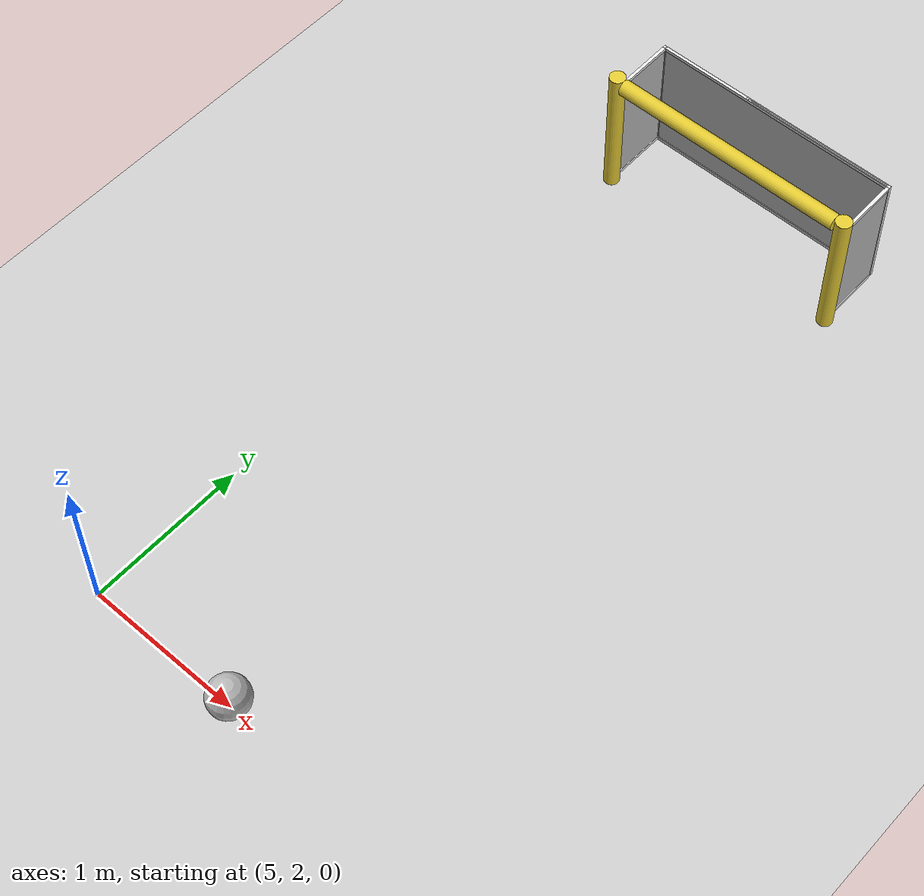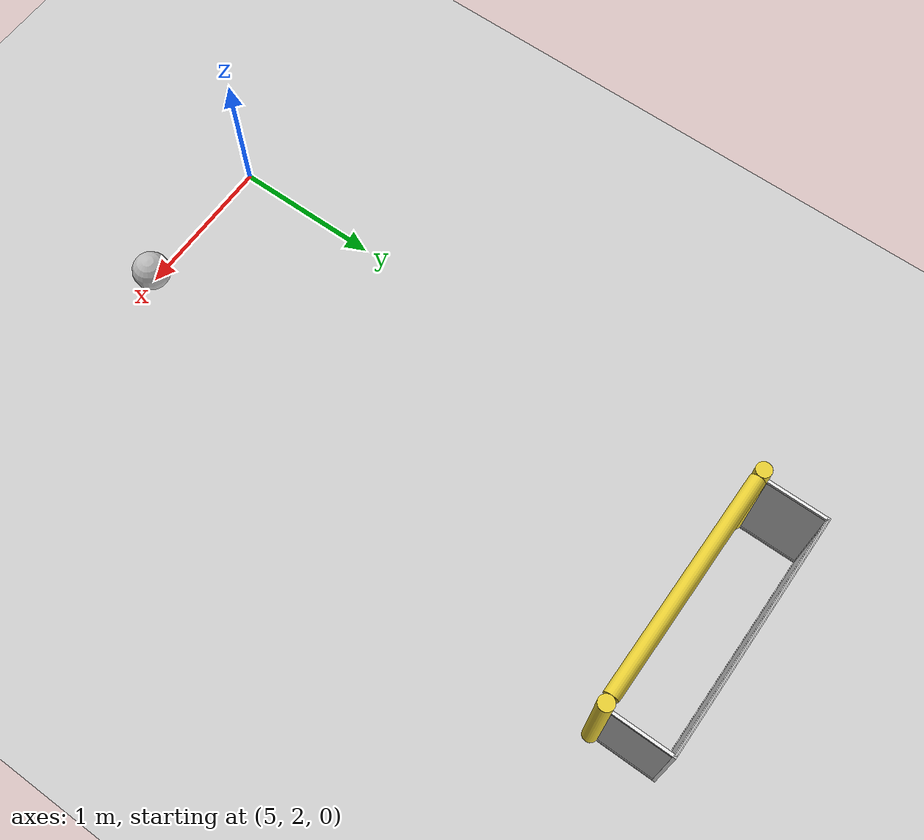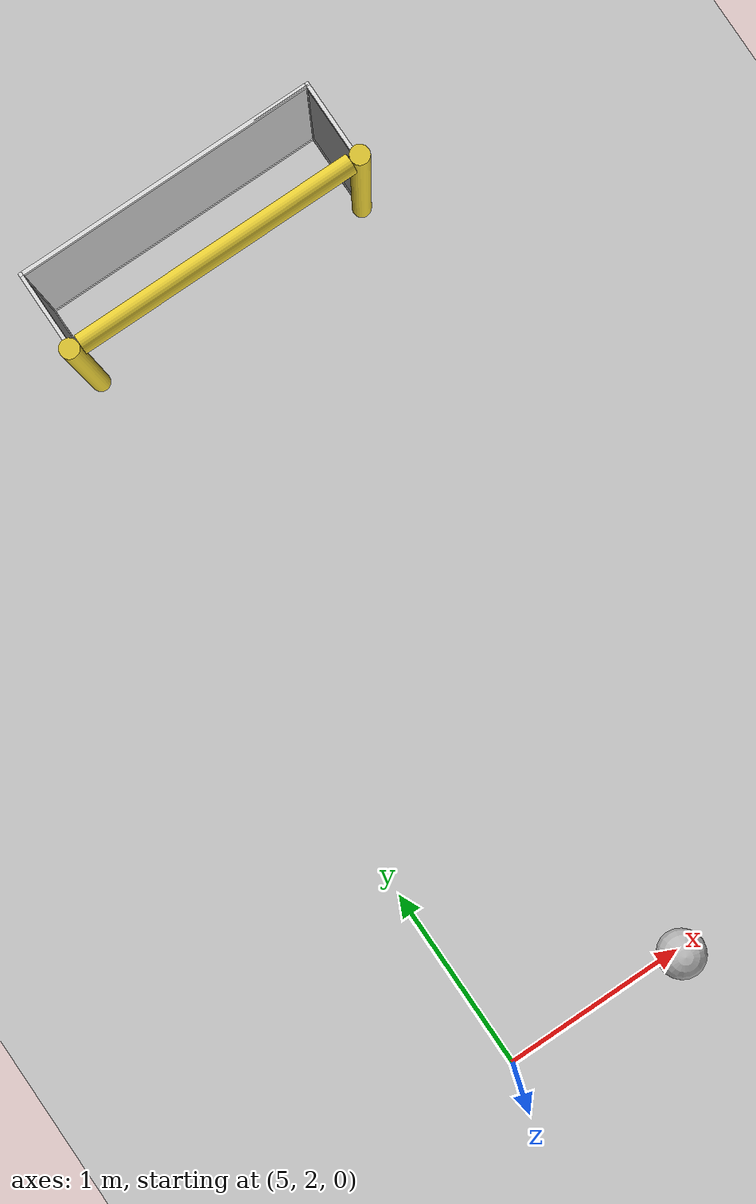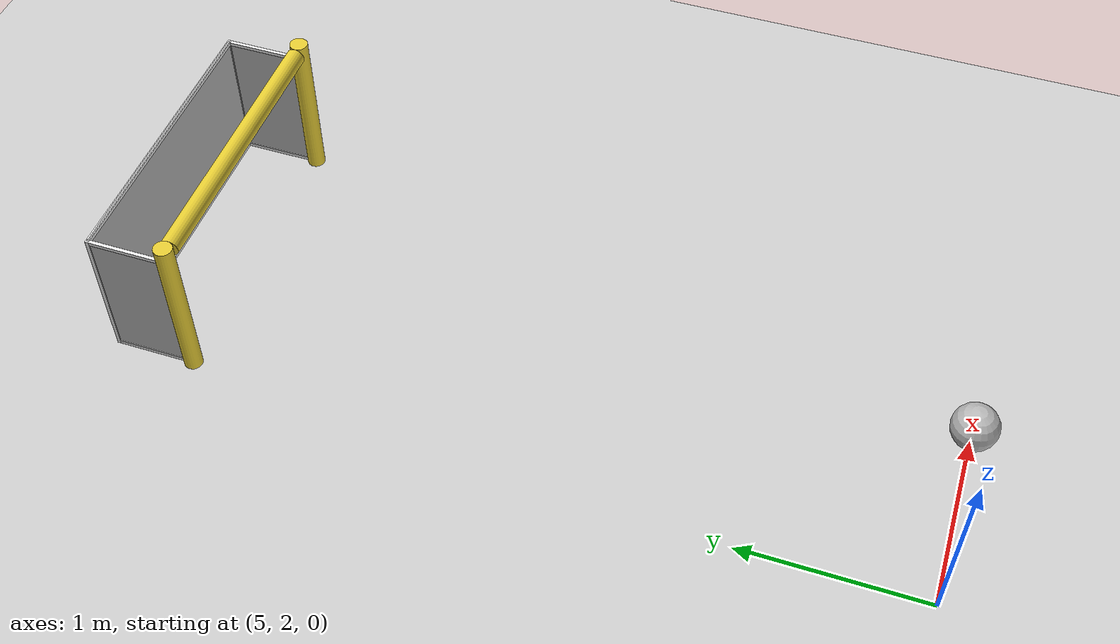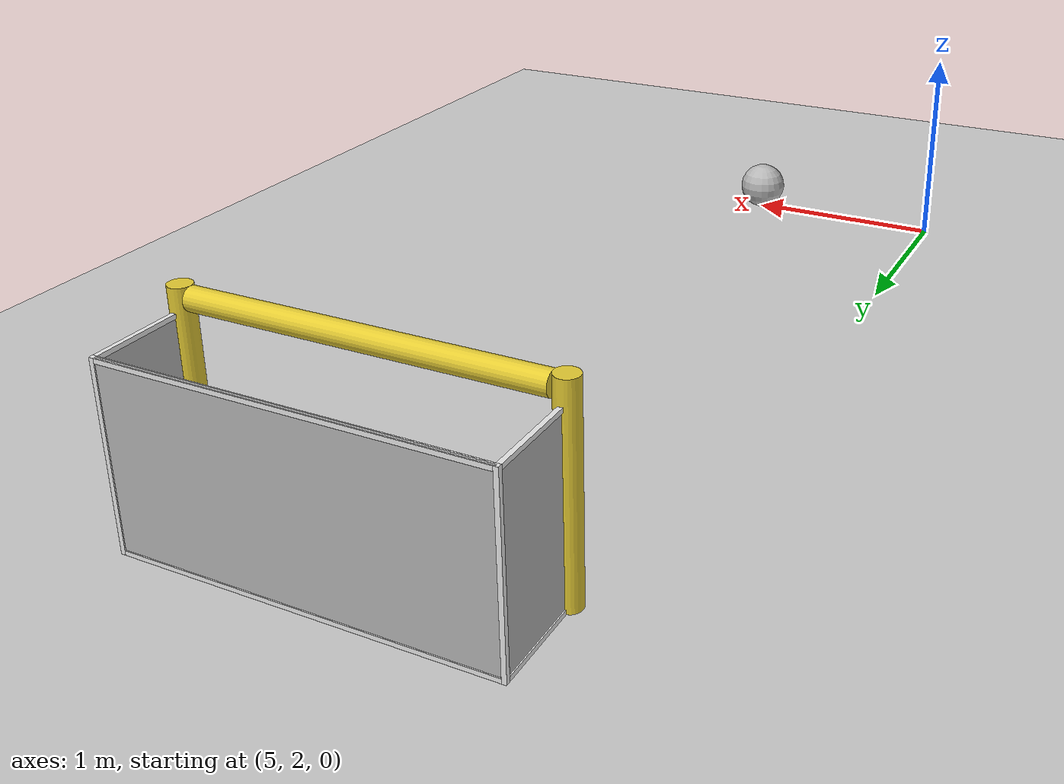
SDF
<?xml version="1.0" ?>
<sdf version="1.4">
  <world name="default">
    <include>
      <uri>model://ground_plane</uri>
    </include>
    <include>
        <uri>model://sun</uri>
    </include>
    <include>
      <uri>model://frc2016_ball</uri>
      <name>ball</name>
      <pose>6.0 2.0 0.13 0.0 0.0 0.0</pose> <!-- Initial position of the ball -->
    </include>
    <include>
      <uri>model://robocup14_spl_goal</uri>
      <name>goal</name>
      <pose>6.0 6.0 0.0 0.0 0.0 1.57075</pose> <!-- Initial position of the goal -->
    </include>
  </world>
</sdf>

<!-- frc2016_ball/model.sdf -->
<sdf version="1.5">
  <model name="frc2016_ball">
    <pose>0 0 0.127 0 0 0</pose>
    <link name="link">
      <inertial>
        <mass>0.1</mass>
        <inertia>
          <ixx>0.003226667</ixx>
          <ixy>0</ixy>
          <ixz>0</ixz>
          <iyy>0.003226667</iyy>
          <iyz>0</iyz>
          <izz>0.003226667</izz>
        </inertia>
      </inertial>

      <visual name="visual">
        <geometry>
          <sphere>
            <radius>0.127</radius>
          </sphere>
        </geometry>
      </visual>

      <collision name="collision">
        <geometry>
          <sphere>
            <radius>0.127</radius>
          </sphere>
        </geometry>
        <surface>
          <bounce>
            <restitution_coefficient>0.15937</restitution_coefficient>
            <threshold>0</threshold>
          </bounce>
          <contact>
            <ode>
              <max_vel>100</max_vel>
              <min_depth>0.001</min_depth>
            </ode>
          </contact>
        </surface>
      </collision>
    </link>
  </model>
</sdf>

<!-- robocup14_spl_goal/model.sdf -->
<sdf version="1.5">
  <model name="RoboCup 2014 SPL Goal">
    <static>true</static>
    <link name="left_post">
      <pose>0 0.8 0.45 0 0 0</pose>
      <collision name="collision">
        <geometry>
          <cylinder>
            <radius>0.05</radius>
            <length>0.9</length>
          </cylinder>
        </geometry>
      </collision>
      <visual name="visual">
        <geometry>
          <cylinder>
            <radius>0.05</radius>
            <length>0.9</length>
          </cylinder>
        </geometry>
        <material>
          <script>
            <uri>file://media/materials/scripts/gazebo.material</uri>
            <name>Gazebo/ZincYellow</name>
          </script>
        </material>
      </visual>
    </link>
    <link name="left_support_horiz_lower">
      <pose>0.24 0.8 0.01 0 0 0</pose>
      <collision name="collision">
        <geometry>
          <box>
            <size>0.38 0.02 0.02</size>
          </box>
        </geometry>
      </collision>
      <visual name="visual">
        <geometry>
          <box>
            <size>0.38 0.02 0.02</size>
          </box>
        </geometry>
        <material>
          <script>
            <uri>file://media/materials/scripts/gazebo.material</uri>
            <name>Gazebo/White</name>
          </script>
        </material>
      </visual>
    </link>
    <link name="left_support_horiz_upper">
      <pose>0.24 0.8 0.79 0 0 0</pose>
      <collision name="collision">
        <geometry>
          <box>
            <size>0.38 0.02 0.02</size>
          </box>
        </geometry>
      </collision>
      <visual name="visual">
        <geometry>
          <box>
            <size>0.38 0.02 0.02</size>
          </box>
        </geometry>
        <material>
          <script>
            <uri>file://media/materials/scripts/gazebo.material</uri>
            <name>Gazebo/White</name>
          </script>
        </material>
      </visual>
    </link>
    <link name="left_support_vertical">
      <pose>0.44 0.8 0.4 0 1.5708 0</pose>
      <collision name="collision">
        <geometry>
          <box>
            <size>0.80 0.02 0.02</size>
          </box>
        </geometry>
      </collision>
      <visual name="visual">
        <geometry>
          <box>
            <size>0.80 0.02 0.02</size>
          </box>
        </geometry>
        <material>
          <script>
            <uri>file://media/materials/scripts/gazebo.material</uri>
            <name>Gazebo/White</name>
          </script>
        </material>
      </visual>
    </link>
    <link name="right_support_horiz_lower">
      <pose>0.24 -0.8 0.01 0 0 0</pose>
      <collision name="collision">
        <geometry>
          <box>
            <size>0.38 0.02 0.02</size>
          </box>
        </geometry>
      </collision>
      <visual name="visual">
        <geometry>
          <box>
            <size>0.38 0.02 0.02</size>
          </box>
        </geometry>
        <material>
          <script>
            <uri>file://media/materials/scripts/gazebo.material</uri>
            <name>Gazebo/White</name>
          </script>
        </material>
      </visual>
    </link>
    <link name="right_support_horiz_upper">
      <pose>0.24 -0.8 0.79 0 0 0</pose>
      <collision name="collision">
        <geometry>
          <box>
            <size>0.38 0.02 0.02</size>
          </box>
        </geometry>
      </collision>
      <visual name="visual">
        <geometry>
          <box>
            <size>0.38 0.02 0.02</size>
          </box>
        </geometry>
        <material>
          <script>
            <uri>file://media/materials/scripts/gazebo.material</uri>
            <name>Gazebo/White</name>
          </script>
        </material>
      </visual>
    </link>
    <link name="right_support_vertical">
      <pose>0.44 -0.8 0.4 0 1.5708 0</pose>
      <collision name="collision">
        <geometry>
          <box>
            <size>0.80 0.02 0.02</size>
          </box>
        </geometry>
      </collision>
      <visual name="visual">
        <geometry>
          <box>
            <size>0.80 0.02 0.02</size>
          </box>
        </geometry>
        <material>
          <script>
            <uri>file://media/materials/scripts/gazebo.material</uri>
            <name>Gazebo/White</name>
          </script>
        </material>
      </visual>
    </link>
    <link name="center_support_horiz_lower">
      <pose>0.44 0 0.01 0 1.5708 0</pose>
      <collision name="collision">
        <geometry>
          <box>
            <size>0.02 1.58 0.02</size>
          </box>
        </geometry>
      </collision>
      <visual name="visual">
        <geometry>
          <box>
            <size>0.02 1.58 0.02</size>
          </box>
        </geometry>
        <material>
          <script>
            <uri>file://media/materials/scripts/gazebo.material</uri>
            <name>Gazebo/White</name>
          </script>
        </material>
      </visual>
    </link>
    <link name="center_support_horiz_upper">
      <pose>0.44 0 0.79 0 1.5708 0</pose>
      <collision name="collision">
        <geometry>
          <box>
            <size>0.02 1.58 0.02</size>
          </box>
        </geometry>
      </collision>
      <visual name="visual">
        <geometry>
          <box>
            <size>0.02 1.58 0.02</size>
          </box>
        </geometry>
        <material>
          <script>
            <uri>file://media/materials/scripts/gazebo.material</uri>
            <name>Gazebo/White</name>
          </script>
        </material>
      </visual>
    </link>
    <link name="right_post">
      <pose>0 -0.8 0.45 0 0 0</pose>
      <collision name="collision">
        <geometry>
          <cylinder>
            <radius>0.05</radius>
            <length>0.9</length>
          </cylinder>
        </geometry>
      </collision>
      <visual name="visual">
        <geometry>
          <cylinder>
            <radius>0.05</radius>
            <length>0.9</length>
          </cylinder>
        </geometry>
        <material>
          <script>
            <uri>file://media/materials/scripts/gazebo.material</uri>
            <name>Gazebo/ZincYellow</name>
          </script>
        </material>
      </visual>
    </link>
    <link name="crossbar">
      <pose>0 0 0.85 1.57 1.57 0</pose>
      <collision name="collision">
        <geometry>
          <cylinder>
            <radius>0.05</radius>
            <length>1.5</length>
          </cylinder>
        </geometry>
      </collision>
      <visual name="visual">
        <geometry>
          <cylinder>
            <radius>0.05</radius>
            <length>1.5</length>
          </cylinder>
        </geometry>
        <material>
          <script>
            <uri>file://media/materials/scripts/gazebo.material</uri>
            <name>Gazebo/ZincYellow</name>
          </script>
        </material>
      </visual>
    </link>
    <link name="center_net">
      <pose>0.44 0 0.40 0 0 0</pose>
      <collision name="collision">
        <geometry>
          <box>
            <size>0.01 1.6 0.80</size>
          </box>
        </geometry>
      </collision>
      <visual name="visual">
        <geometry>
          <box>
            <size>0.01 1.6 0.80</size>
          </box>
        </geometry>
        <material>
          <script>
            <uri>model://../model_source/models/robocup09_spl_field/materials/scripts/</uri>
            <uri>model://../model_source/models/robocup09_spl_field/materials/textures/</uri>
            <name>RoboCup/Net</name>
          </script>
        </material>
      </visual>
    </link>
    <link name="left_net">
      <pose>0.24 0.8 0.40 0 0 0</pose>
      <collision name="collision">
        <geometry>
          <box>
            <size>0.38 0.01 0.76</size>
          </box>
        </geometry>
      </collision>
      <visual name="visual">
        <geometry>
          <box>
            <size>0.38 0.01 0.76</size>
          </box>
        </geometry>
        <material>
          <script>
            <uri>model://../model_source/models/robocup09_spl_field/materials/scripts/</uri>
            <uri>model://../model_source/models/robocup09_spl_field/materials/textures/</uri>
            <name>RoboCup/Net</name>
          </script>
        </material>
      </visual>
    </link>
    <link name="right_net">
      <pose>0.24 -0.8 0.40 0 0 0</pose>
      <collision name="collision">
        <geometry>
          <box>
            <size>0.38 0.01 0.76</size>
          </box>
        </geometry>
      </collision>
      <visual name="visual">
        <geometry>
          <box>
            <size>0.38 0.01 0.76</size>
          </box>
        </geometry>
        <material>
          <script>
            <uri>model://../model_source/models/robocup09_spl_field/materials/scripts/</uri>
            <uri>model://../model_source/models/robocup09_spl_field/materials/textures/</uri>
            <name>RoboCup/Net</name>
          </script>
        </material>
      </visual>
    </link>
  </model>
</sdf>
